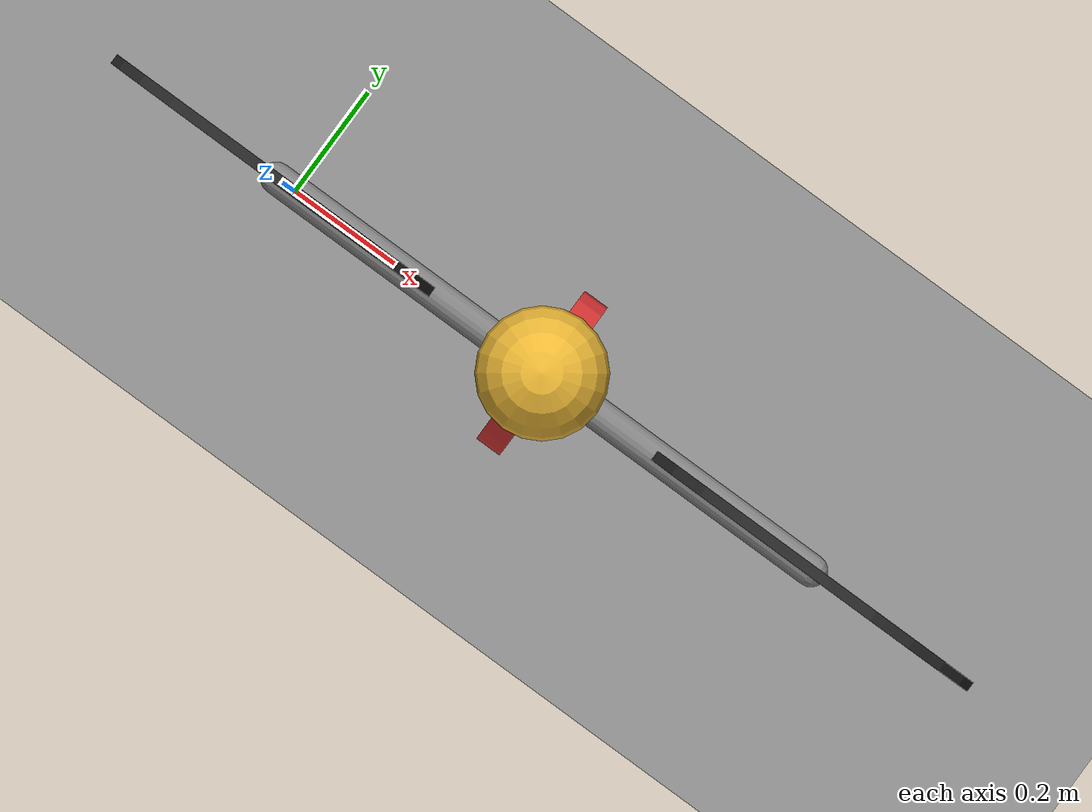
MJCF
<mujoco model="reaction_wheel_bicycle">
  <compiler angle="degree" autolimits="true"/>
  <option timestep="0.004" integrator="implicitfast" gravity="0 0 -9.81"/>

  <default>
    <joint damping="0.02" armature="0.0005"/>
    <geom contype="1" conaffinity="1" friction="1.0 0.005 0.0001"/>
    <default class="wheel">
      <!-- 얇은 타이어(폭 1.6cm): 접지가 점에 가까워 roll 불안정 = 진짜 균형 문제 -->
      <geom type="cylinder" fromto="0 -0.008 0  0 0.008 0" size="0.30"
            rgba="0.15 0.15 0.15 1" friction="1.4 0.01 0.001"/>
    </default>
    <default class="flywheel">
      <geom type="cylinder" rgba="0.85 0.2 0.2 1" contype="0" conaffinity="0"/>
    </default>
  </default>

  <worldbody>
    <light pos="0 0 3" dir="0 0 -1" diffuse="0.8 0.8 0.8"/>
    <geom name="ground" type="plane" size="0 0 0.05" rgba="0.55 0.55 0.55 1"/>

    <!-- frame: free joint so it can lean / fall -->
    <body name="frame" pos="0 0 0.30">
      <freejoint name="root"/>
      <site name="imu" pos="0.5 0 0.10"/>

      <!-- main frame + rider mass (CoM raised) -->
      <geom name="downtube" type="capsule" fromto="0 0 0  1.0 0 0.05" size="0.025" mass="3"/>
      <geom name="seattube" type="capsule" fromto="0.5 0 0.05  0.5 0 0.45" size="0.022" mass="1"/>
      <geom name="rider"    type="sphere"  pos="0.5 0 0.50" size="0.09" mass="4" rgba="0.9 0.7 0.2 1"/>

      <!-- rear wheel (driven) -->
      <body name="rear_wheel" pos="0 0 0">
        <joint name="rear_spin" type="hinge" axis="0 1 0"/>
        <geom class="wheel" name="rear_geom" mass="1.2"/>
      </body>

      <!-- reaction wheel: spin axis = x (roll/lean axis) -->
      <body name="reaction_wheel" pos="0.5 0 0.25">
        <joint name="flywheel" type="hinge" axis="1 0 0"/>
        <geom class="flywheel" name="flywheel_geom"
              fromto="-0.02 0 0  0.02 0 0" size="0.13" mass="2.5"/>
      </body>

      <!-- steering fork + front wheel. 조향축 12° 후경(caster):
           축이 지면과 만나는 점이 접지점보다 앞 → trail = 0.35·tan12° ≈ 74mm.
           실차급 self-centering + lean→steer 자연 결합 (v1은 수직축=trail 0이라 포크 잼) -->
      <body name="fork" pos="1.0 0 0.05">
        <joint name="steer" type="hinge" axis="-0.2079 0 0.9781" range="-45 45"/>
        <geom name="fork_geom" type="capsule" fromto="0 0 0  0 0 -0.05" size="0.022" mass="0.6"/>
        <body name="front_wheel" pos="0 0 -0.05">
          <joint name="front_spin" type="hinge" axis="0 1 0"/>
          <geom class="wheel" name="front_geom" mass="1.2"/>
        </body>
      </body>
    </body>
  </worldbody>

  <!-- downtube 끝단이 앞바퀴 내부를 관통(-33mm)하는데 frame↔front_wheel은
       조부모-손자 관계라 자동 접촉제외가 안 됨 → 1.9kN 상시 브레이크로 작용했음.
       (부모-자식만 자동 제외되는 MuJoCo filterparent 규칙) -->
  <contact>
    <exclude body1="frame" body2="front_wheel"/>
  </contact>

  <actuator>
    <motor name="flywheel_torque" joint="flywheel"  ctrlrange="-10 10"/>
    <motor name="steer_torque"    joint="steer"     ctrlrange="-3 3"/>
    <motor name="rear_drive"      joint="rear_spin" ctrlrange="-4 4"/>
  </actuator>

  <sensor>
    <framezaxis  name="frame_up"    objtype="site" objname="imu"/>
    <gyro        name="imu_gyro"    site="imu"/>
    <accelerometer name="imu_acc"   site="imu"/>
    <jointvel    name="flywheel_w"  joint="flywheel"/>
    <jointvel    name="rear_w"      joint="rear_spin"/>
  </sensor>
</mujoco>
